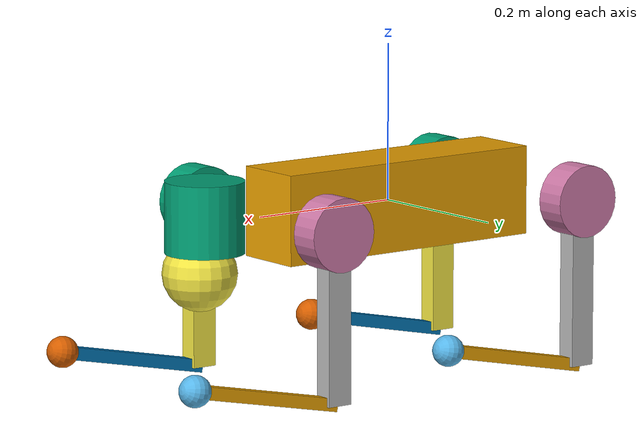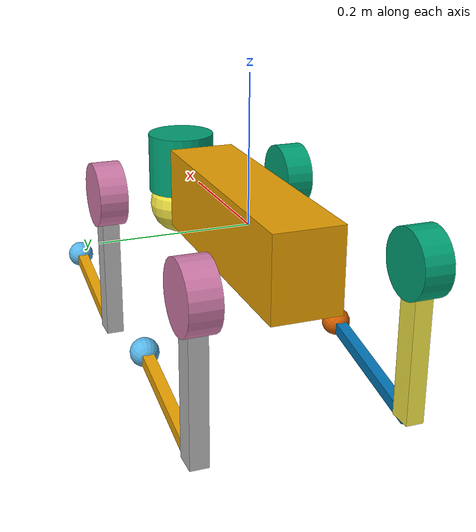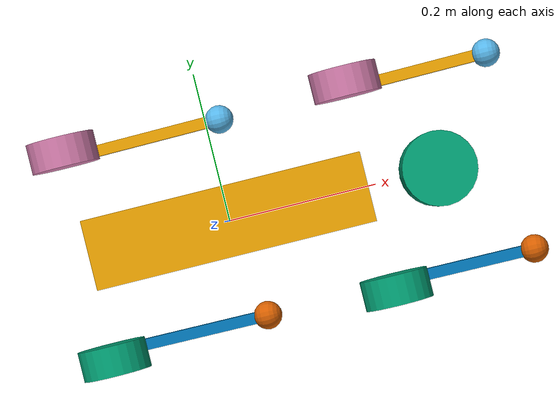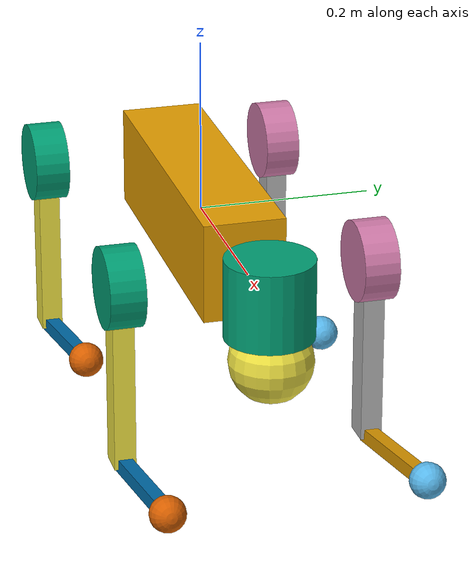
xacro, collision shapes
<?xml version="1.0"?>

<robot name="go2"
    xmlns:xacro="http://www.ros.org/wiki/xacro">

    <!-- Declare argument -->
    <xacro:arg name="enable_gazebo" default="False"/>

    <!-- Declare parameters -->
    <xacro:property name="enable_gazebo" value="$(arg enable_gazebo)"/>

    <!-- Include other file -->
    <xacro:include filename="$(find go2_description)/xacro/const.xacro"/>
    <xacro:include filename="$(find go2_description)/xacro/materials.xacro"/>
    <xacro:include filename="$(find go2_description)/xacro/leg.xacro"/>
    <xacro:if value="${enable_gazebo}">
        <xacro:include filename="$(find go2_description)/xacro/gazebo.xacro"/>
    </xacro:if>

    <!-- base_link -->
    <!-- Since the `trunk` frame is completely redundant,
         we remove it and move its settings to `base_link`. -->
    <link name="base_link">
        <visual>
            <origin rpy="0 0 0" xyz="0 0 0"/>
            <geometry>
                <mesh filename="package://go2_description/meshes/trunk.dae" scale="1 1 1"/>
            </geometry>
        </visual>
        <collision>
            <origin rpy="0 0 0" xyz="0 0 0"/>
            <geometry>
                <box size="${trunk_length} ${trunk_width} ${trunk_height}"/>
            </geometry>
        </collision>
        <inertial>
            <origin rpy="0 0 0" xyz="${trunk_com_x} ${trunk_com_y} ${trunk_com_z}"/>
            <mass value="${trunk_mass}"/>
            <inertia ixx="${trunk_ixx}" ixy="${trunk_ixy}" ixz="${trunk_ixz}" iyy="${trunk_iyy}" iyz="${trunk_iyz}" izz="${trunk_izz}"/>
        </inertial>
    </link>

    <!-- base_footprint -->
    <!-- The `base_footprint` link is initially set at `base_link`,
         but it will be updated based on the actual body height computed using forward kinematics. -->
    <link name="base_footprint"/>
    <joint name="base_footprint_joint" type="fixed">
        <parent link="base_link"/>
        <child link="base_footprint"/>
        <origin xyz="0 0 0" rpy="0 0 0"/>
    </joint>

    <!-- Include four legs -->
    <xacro:leg name="FR" mirror="-1" mirror_dae= "False" front_hind="1" front_hind_dae="True" />
    <xacro:leg name="FL" mirror="1" mirror_dae="True" front_hind="1" front_hind_dae="True" />
    <xacro:leg name="RR" mirror="-1" mirror_dae="False" front_hind="-1" front_hind_dae="False" />
    <xacro:leg name="RL" mirror="1" mirror_dae="True" front_hind="-1" front_hind_dae="False" />

    <!-- Head_upper -->
    <link name="Head_upper">
        <inertial>
            <origin xyz="0 0 0" rpy="0 0 0" />
            <mass value="0.001" />
            <inertia ixx="9.6e-06" ixy="0" ixz="0" iyy="9.6e-06" iyz="0" izz="9.6e-06" />
        </inertial>
        <collision>
            <origin xyz="0 0 0" rpy="0 0 0" />
            <geometry>
                <cylinder radius="0.05" length="0.09" />
            </geometry>
        </collision>
    </link>
    <joint name="Head_upper_joint" type="fixed" dont_collapse="true">
        <origin xyz="0.285 0 0.01" rpy="0 0 0" />
        <parent link="base_link" />
        <child link="Head_upper" />
        <axis xyz="0 0 0" />
    </joint>

    <!-- Head_lower -->
    <link name="Head_lower">
        <inertial>
            <origin xyz="0 0 0" rpy="0 0 0" />
            <mass value="0.001" />
            <inertia ixx="9.6e-06" ixy="0" ixz="0" iyy="9.6e-06" iyz="0" izz="9.6e-06" />
        </inertial>
        <collision>
            <origin xyz="0 0 0" rpy="0 0 0" />
            <geometry>
                <sphere radius="0.047" />
            </geometry>
        </collision>
    </link>
    <joint name="Head_lower_joint" type="fixed" dont_collapse="true">
        <origin xyz="0.008 0 -0.07" rpy="0 0 0" />
        <parent link="Head_upper" />
        <child link="Head_lower" />
        <axis xyz="0 0 0" />
    </joint>

    <!-- imu_link -->
    <link name="imu_link"/>
    <joint name="imu_joint" type="fixed">
        <origin xyz="-0.02557 0 0.04232" rpy="0 0 0" />
        <parent link="base_link" />
        <child link="imu_link" />
        <axis xyz="0 0 0" />
    </joint>

    <!-- radar -->
    <link name="radar_link"/>
    <joint name="radar_joint" type="fixed">
        <origin xyz="0.28945 0 -0.046825" rpy="0 2.8782 0" />
        <parent link="base_link" />
        <child link="radar_link" />
        <axis xyz="0 0 0" />
    </joint>

    <!-- front camera -->
    <link name="front_camera_link"/>
    <joint name="front_camera_joint" type="fixed">
        <origin xyz="0.045 0 0.03" rpy="-1.5708 0 -1.5708" />
        <parent link="Head_upper" />
        <child link="front_camera_link" />
        <axis xyz="0 0 0" />
    </joint>
</robot>

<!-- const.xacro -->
<robot xmlns:xacro="http://www.ros.org/wiki/xacro">

    <!-- Constants for robot dimensions -->
    <xacro:property name="PI" value="3.1415926535897931"/>
    <xacro:property name="stick_mass" value="0.00001"/>

    <!-- simplified collision value -->
    <xacro:property name="trunk_width" value="0.0935"/>
    <xacro:property name="trunk_length" value="0.3762"/>
    <xacro:property name="trunk_height" value="0.114"/>
    <xacro:property name="hip_radius" value="0.046"/>
    <xacro:property name="hip_length" value="0.04"/>
    <xacro:property name="thigh_shoulder_radius" value="0.041"/>
    <xacro:property name="thigh_shoulder_length" value="0.032"/>
    <xacro:property name="thigh_width" value="0.0245"/>
    <xacro:property name="thigh_height" value="0.034"/>
    <xacro:property name="calf_width" value="0.016"/>
    <xacro:property name="calf_height" value="0.016"/>
    <xacro:property name="foot_radius" value="0.02"/>
    <xacro:property name="stick_radius" value="0.01"/>
    <xacro:property name="stick_length" value="0.2"/>

    <!-- kinematic value -->
    <xacro:property name="thigh_offset" value="0.0955"/>
    <xacro:property name="thigh_length" value="0.213"/>
    <xacro:property name="calf_length" value="0.213"/>

    <!-- leg offset from trunk center value -->
    <xacro:property name="leg_offset_x" value="0.1934"/>
    <xacro:property name="leg_offset_y" value="0.0465"/>
    <xacro:property name="hip_offset" value="0.0955"/>

    <!-- offset of link locations (left front) -->
    <xacro:property name="hip_offset_x" value="0.1934"/>
    <xacro:property name="hip_offset_y" value="0.0465"/>
    <xacro:property name="hip_offset_z" value="0.0"/>

    <xacro:property name="thigh_offset_x" value="0"/>
    <xacro:property name="thigh_offset_y" value="0.0955"/>
    <xacro:property name="thigh_offset_z" value="0.0"/>

    <xacro:property name="calf_offset_x" value="0.0"/>
    <xacro:property name="calf_offset_y" value="0.0"/>
    <xacro:property name="calf_offset_z" value="-0.213"/>

    <!-- joint limits -->
    <xacro:property name="damping" value="0.01"/>
    <xacro:property name="friction" value="0.2"/>
    <xacro:property name="hip_position_max" value="1.0472"/>
    <xacro:property name="hip_position_min" value="-1.0472"/>
    <xacro:property name="hip_velocity_max" value="30.1"/>
    <xacro:property name="hip_torque_max" value="23.7"/>
    <xacro:property name="thigh_position_max" value="3.4907"/>
    <xacro:property name="thigh_position_min" value="-1.5708"/>
    <xacro:property name="thigh_velocity_max" value="30.1"/>
    <xacro:property name="thigh_torque_max" value="23.7"/>
    <xacro:property name="calf_position_max" value="-0.83776"/>
    <xacro:property name="calf_position_min" value="-2.7227"/>
    <xacro:property name="calf_velocity_max" value="20.06"/>
    <xacro:property name="calf_torque_max" value="35.55"/>

    <!-- dynamics inertial value -->
    <!-- trunk -->
    <xacro:property name="trunk_mass" value="6.921"/>
    <xacro:property name="trunk_com_x" value="0.021112"/>
    <xacro:property name="trunk_com_y" value="0.00"/>
    <xacro:property name="trunk_com_z" value="-0.005366"/>
    <xacro:property name="trunk_ixx" value="0.02448"/>
    <xacro:property name="trunk_ixy" value="0.00012166"/>
    <xacro:property name="trunk_ixz" value="0.0014849"/>
    <xacro:property name="trunk_iyy" value="0.098077"/>
    <xacro:property name="trunk_iyz" value="-3.12E-05"/>
    <xacro:property name="trunk_izz" value="0.107"/>

    <!-- hip (left front) -->
    <xacro:property name="hip_mass" value="0.678"/>
    <xacro:property name="hip_com_x" value="-0.0054"/>
    <xacro:property name="hip_com_y" value="0.00194"/>
    <xacro:property name="hip_com_z" value="-0.000105"/>
    <xacro:property name="hip_ixx" value="0.00048"/>
    <xacro:property name="hip_ixy" value="-3.01E-06"/>
    <xacro:property name="hip_ixz" value="1.11E-06"/>
    <xacro:property name="hip_iyy" value="0.000884"/>
    <xacro:property name="hip_iyz" value="-1.42E-06"/>
    <xacro:property name="hip_izz" value="0.000596"/>

    <!-- thigh -->
    <xacro:property name="thigh_mass" value="1.152"/>
    <xacro:property name="thigh_com_x" value="-0.00374"/>
    <xacro:property name="thigh_com_y" value="-0.0223"/>
    <xacro:property name="thigh_com_z" value="-0.0327"/>
    <xacro:property name="thigh_ixx" value="0.00584"/>
    <xacro:property name="thigh_ixy" value="8.72E-05"/>
    <xacro:property name="thigh_ixz" value="-0.000289"/>
    <xacro:property name="thigh_iyy" value="0.0058"/>
    <xacro:property name="thigh_iyz" value="0.000808"/>
    <xacro:property name="thigh_izz" value="0.00103"/>

    <!-- calf -->
    <xacro:property name="calf_mass" value="0.154"/>
    <xacro:property name="calf_com_x" value="0.00548"/>
    <xacro:property name="calf_com_y" value="-0.000975"/>
    <xacro:property name="calf_com_z" value="-0.115"/>
    <xacro:property name="calf_ixx" value="0.00108"/>
    <xacro:property name="calf_ixy" value="3.4E-07"/>
    <xacro:property name="calf_ixz" value="1.72E-05"/>
    <xacro:property name="calf_iyy" value="0.0011"/>
    <xacro:property name="calf_iyz" value="8.28E-06"/>
    <xacro:property name="calf_izz" value="3.29E-05"/>

    <!-- foot -->
    <xacro:property name="foot_mass" value="0.06"/>

</robot>

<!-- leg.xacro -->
<robot xmlns:xacro="http://www.ros.org/wiki/xacro">
    <xacro:macro name="leg" params="name mirror mirror_dae front_hind front_hind_dae">

        <joint name="${name}_hip_joint" type="revolute">
            <xacro:if value="${(mirror_dae == False) and (front_hind_dae == True)}">
                <origin rpy="0 0 0" xyz="${leg_offset_x} ${-leg_offset_y} 0"/>
            </xacro:if>
            <xacro:if value="${(mirror_dae == True) and (front_hind_dae == True)}">
                <origin rpy="0 0 0" xyz="${leg_offset_x} ${leg_offset_y} 0"/>
            </xacro:if>
            <xacro:if value="${(mirror_dae == False) and (front_hind_dae == False)}">
                <origin rpy="0 0 0" xyz="${-leg_offset_x} ${-leg_offset_y} 0"/>
            </xacro:if>
            <xacro:if value="${(mirror_dae == True) and (front_hind_dae == False)}">
                <origin rpy="0 0 0" xyz="${-leg_offset_x} ${leg_offset_y} 0"/>
            </xacro:if>
            <parent link="base_link"/>
            <child link="${name}_hip"/>
            <axis xyz="1 0 0"/>
            <dynamics damping="${damping}" friction="${friction}"/>
            <xacro:if value="${(mirror_dae == True)}">
                <limit effort="${hip_torque_max}" velocity="${hip_velocity_max}" lower="${hip_position_min}" upper="${hip_position_max}"/>
            </xacro:if>
            <xacro:if value="${(mirror_dae == False)}">
                <limit effort="${hip_torque_max}" velocity="${hip_velocity_max}" lower="${-hip_position_max}" upper="${-hip_position_min}"/>
            </xacro:if>
        </joint>

        <link name="${name}_hip">
            <visual>
                <xacro:if value="${(mirror_dae == True) and (front_hind_dae == True)}">
                    <origin rpy="0 0 0" xyz="0 0 0"/>
                </xacro:if>
                <xacro:if value="${(mirror_dae == False) and (front_hind_dae == True)}">
                    <origin rpy="${PI} 0 0" xyz="0 0 0"/>
                </xacro:if>
                <xacro:if value="${(mirror_dae == True) and (front_hind_dae == False)}">
                    <origin rpy="0 ${PI} 0" xyz="0 0 0"/>
                </xacro:if>
                <xacro:if value="${(mirror_dae == False) and (front_hind_dae == False)}">
                    <origin rpy="${PI} ${PI} 0" xyz="0 0 0"/>
                </xacro:if>
                <geometry>
                    <mesh filename="package://go2_description/meshes/hip.dae" scale="1 1 1"/>
                </geometry>
            </visual>
            <collision>
                <origin rpy="${PI/2.0} 0 0" xyz="0 ${hip_offset*mirror} 0"/>
                <geometry>
                    <cylinder length="${hip_length}" radius="${hip_radius}"/>
                </geometry>
            </collision>
            <inertial>
                <origin rpy="0 0 0" xyz="${hip_com_x*front_hind} ${hip_com_y*mirror} ${hip_com_z}"/>
                <mass value="${hip_mass}"/>
                <inertia ixx="${hip_ixx}" ixy="${hip_ixy*mirror*front_hind}" ixz="${hip_ixz*front_hind}" iyy="${hip_iyy}" iyz="${hip_iyz*mirror}" izz="${hip_izz}"/>
            </inertial>
        </link>

        <joint name="${name}_thigh_joint" type="revolute">
            <origin rpy="0 0 0" xyz="0 ${thigh_offset*mirror} 0"/>
            <parent link="${name}_hip"/>
            <child link="${name}_thigh"/>
            <axis xyz="0 1 0"/>
            <dynamics damping="${damping}" friction="${friction}"/>
            <limit effort="${thigh_torque_max}" velocity="${thigh_velocity_max}" lower="${thigh_position_min}" upper="${thigh_position_max}"/>
        </joint>

        <link name="${name}_thigh">
            <visual>
                <origin rpy="0 0 0" xyz="0 0 0"/>
                <geometry>
                    <xacro:if value="${mirror_dae == True}">
                        <mesh filename="package://go2_description/meshes/thigh.dae" scale="1 1 1"/>
                    </xacro:if>
                    <xacro:if value="${mirror_dae == False}">
                        <mesh filename="package://go2_description/meshes/thigh_mirror.dae" scale="1 1 1"/>
                    </xacro:if>
                </geometry>
            </visual>
            <collision>
                <origin rpy="0 ${PI/2.0} 0" xyz="0 0 ${-thigh_length/2.0}"/>
                <geometry>
                    <box size="${thigh_length} ${thigh_width} ${thigh_height}"/>
                </geometry>
            </collision>
            <inertial>
                <origin rpy="0 0 0" xyz="${thigh_com_x} ${thigh_com_y*mirror} ${thigh_com_z}"/>
                <mass value="${thigh_mass}"/>
                <inertia ixx="${thigh_ixx}" ixy="${thigh_ixy*mirror}" ixz="${thigh_ixz}" iyy="${thigh_iyy}" iyz="${thigh_iyz*mirror}" izz="${thigh_izz}"/>
            </inertial>
        </link>

        <joint name="${name}_calf_joint" type="revolute">
            <origin rpy="0 0 0" xyz="0 0 ${-thigh_length}"/>
            <parent link="${name}_thigh"/>
            <child link="${name}_calf"/>
            <axis xyz="0 1 0"/>
            <dynamics damping="${damping}" friction="${friction}"/>
            <limit effort="${calf_torque_max}" velocity="${calf_velocity_max}" lower="${calf_position_min}" upper="${calf_position_max}"/>
        </joint>

        <link name="${name}_calf">
            <visual>
                <origin rpy="0 0 0" xyz="0 0 0"/>
                <geometry>
                    <mesh filename="package://go2_description/meshes/calf.dae" scale="1 1 1"/>
                </geometry>
            </visual>
            <collision>
                <origin rpy="0 ${PI/2.0} 0" xyz="0 0 ${-calf_length/2.0}"/>
                <geometry>
                    <box size="${calf_length} ${calf_width} ${calf_height}"/>
                </geometry>
            </collision>
            <inertial>
                <origin rpy="0 0 0" xyz="${calf_com_x} ${calf_com_y} ${calf_com_z}"/>
                <mass value="${calf_mass}"/>
                <inertia ixx="${calf_ixx}" ixy="${calf_ixy}" ixz="${calf_ixz}" iyy="${calf_iyy}" iyz="${calf_iyz}" izz="${calf_izz}"/>
            </inertial>
        </link>

        <joint name="${name}_foot_joint" type="fixed">
            <origin rpy="0 0 0" xyz="0 0 ${-(calf_length)}"/>
            <parent link="${name}_calf"/>
            <child link="${name}_foot"/>
        </joint>

        <link name="${name}_foot">
            <visual>
                <origin rpy="0 0 0" xyz="0 0 0"/>
                <geometry>
                    <sphere radius="${foot_radius-0.01}"/>
                </geometry>
            </visual>
            <collision>
                <origin rpy="0 0 0" xyz="0 0 0"/>
                <geometry>
                    <sphere radius="${foot_radius}"/>
                </geometry>
            </collision>
            <inertial>
                <mass value="${foot_mass}"/>
                <inertia ixx="${(2*foot_mass)/5.0*(foot_radius*foot_radius)}" ixy="0.0" ixz="0.0" iyy="${(2*foot_mass)/5.0*(foot_radius*foot_radius)}" iyz="0.0" izz="${(2*foot_mass)/5.0*(foot_radius*foot_radius)}"/>
            </inertial>
        </link>
    </xacro:macro>
</robot>
